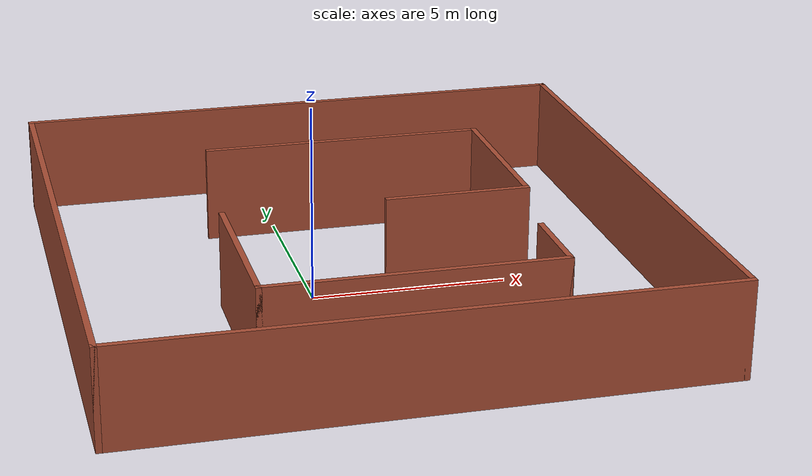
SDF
<?xml version='1.0'?>
<sdf version='1.7'>
  <model name='maze'>
    <pose>1.245 0.605 0 0 -0 0</pose>
    <link name='Wall_1'>
      <collision name='Wall_1_Collision'>
        <geometry>
          <box>
            <size>15 0.15 2.5</size>
          </box>
        </geometry>
        <pose>0 0 1.25 0 -0 0</pose>
      </collision>
      <visual name='Wall_1_Visual'>
        <pose>0 0 1.25 0 -0 0</pose>
        <geometry>
          <box>
            <size>15 0.15 2.5</size>
          </box>
        </geometry>
        <material>
          <script>
            <uri>file://media/materials/scripts/gazebo.material</uri>
            <name>Gazebo/Bricks</name>
          </script>
          <ambient>1 1 1 1</ambient>
        </material>
        <meta>
          <layer>0</layer>
        </meta>
      </visual>
      <pose>-0 -7.425 0 0 -0 0</pose>
    </link>
    <link name='Wall_10'>
      <collision name='Wall_10_Collision'>
        <geometry>
          <box>
            <size>3.75 0.15 2.5</size>
          </box>
        </geometry>
        <pose>0 0 1.25 0 -0 0</pose>
      </collision>
      <visual name='Wall_10_Visual'>
        <pose>0 0 1.25 0 -0 0</pose>
        <geometry>
          <box>
            <size>3.75 0.15 2.5</size>
          </box>
        </geometry>
        <material>
          <script>
            <uri>file://media/materials/scripts/gazebo.material</uri>
            <name>Gazebo/Bricks</name>
          </script>
          <ambient>1 1 1 1</ambient>
        </material>
        <meta>
          <layer>0</layer>
        </meta>
      </visual>
      <pose>2.50852 -0.592092 0 0 -0 3.14159</pose>
    </link>
    <link name='Wall_12'>
      <collision name='Wall_12_Collision'>
        <geometry>
          <box>
            <size>4.75 0.15 2.5</size>
          </box>
        </geometry>
        <pose>0 0 1.25 0 -0 0</pose>
      </collision>
      <visual name='Wall_12_Visual'>
        <pose>0 0 1.25 0 -0 0</pose>
        <geometry>
          <box>
            <size>4.75 0.15 2.5</size>
          </box>
        </geometry>
        <material>
          <script>
            <uri>file://media/materials/scripts/gazebo.material</uri>
            <name>Gazebo/Bricks</name>
          </script>
          <ambient>1 1 1 1</ambient>
        </material>
        <meta>
          <layer>0</layer>
        </meta>
      </visual>
      <pose>-3.49369 -2.92053 0 0 -0 -1.5708</pose>
    </link>
    <link name='Wall_13'>
      <collision name='Wall_13_Collision'>
        <geometry>
          <box>
            <size>7.5 0.15 2.5</size>
          </box>
        </geometry>
        <pose>0 0 1.25 0 -0 0</pose>
      </collision>
      <visual name='Wall_13_Visual'>
        <pose>0 0 1.25 0 -0 0</pose>
        <geometry>
          <box>
            <size>7.5 0.15 2.5</size>
          </box>
        </geometry>
        <material>
          <script>
            <uri>file://media/materials/scripts/gazebo.material</uri>
            <name>Gazebo/Bricks</name>
          </script>
          <ambient>1 1 1 1</ambient>
        </material>
        <meta>
          <layer>0</layer>
        </meta>
      </visual>
      <pose>0.181315 -5.22053 0 0 -0 0</pose>
    </link>
    <link name='Wall_14'>
      <collision name='Wall_14_Collision'>
        <geometry>
          <box>
            <size>2.25 0.15 2.5</size>
          </box>
        </geometry>
        <pose>0 0 1.25 0 -0 0</pose>
      </collision>
      <visual name='Wall_14_Visual'>
        <pose>0 0 1.25 0 -0 0</pose>
        <geometry>
          <box>
            <size>2.25 0.15 2.5</size>
          </box>
        </geometry>
        <material>
          <script>
            <uri>file://media/materials/scripts/gazebo.material</uri>
            <name>Gazebo/Bricks</name>
          </script>
          <ambient>1 1 1 1</ambient>
        </material>
        <meta>
          <layer>0</layer>
        </meta>
      </visual>
      <pose>3.85631 -4.17053 0 0 -0 1.5708</pose>
    </link>
    <link name='Wall_2'>
      <collision name='Wall_2_Collision'>
        <geometry>
          <box>
            <size>15 0.15 2.5</size>
          </box>
        </geometry>
        <pose>0 0 1.25 0 -0 0</pose>
      </collision>
      <visual name='Wall_2_Visual'>
        <pose>0 0 1.25 0 -0 0</pose>
        <geometry>
          <box>
            <size>15 0.15 2.5</size>
          </box>
        </geometry>
        <material>
          <script>
            <uri>file://media/materials/scripts/gazebo.material</uri>
            <name>Gazebo/Bricks</name>
          </script>
          <ambient>1 1 1 1</ambient>
        </material>
        <meta>
          <layer>0</layer>
        </meta>
      </visual>
      <pose>7.425 -0 0 0 -0 1.5708</pose>
    </link>
    <link name='Wall_3'>
      <collision name='Wall_3_Collision'>
        <geometry>
          <box>
            <size>15 0.15 2.5</size>
          </box>
        </geometry>
        <pose>0 0 1.25 0 -0 0</pose>
      </collision>
      <visual name='Wall_3_Visual'>
        <pose>0 0 1.25 0 -0 0</pose>
        <geometry>
          <box>
            <size>15 0.15 2.5</size>
          </box>
        </geometry>
        <material>
          <script>
            <uri>file://media/materials/scripts/gazebo.material</uri>
            <name>Gazebo/Bricks</name>
          </script>
          <ambient>1 1 1 1</ambient>
        </material>
        <meta>
          <layer>0</layer>
        </meta>
      </visual>
      <pose>-0 7.425 0 0 -0 3.14159</pose>
    </link>
    <link name='Wall_4'>
      <collision name='Wall_4_Collision'>
        <geometry>
          <box>
            <size>15 0.15 2.5</size>
          </box>
        </geometry>
        <pose>0 0 1.25 0 -0 0</pose>
      </collision>
      <visual name='Wall_4_Visual'>
        <pose>0 0 1.25 0 -0 0</pose>
        <geometry>
          <box>
            <size>15 0.15 2.5</size>
          </box>
        </geometry>
        <material>
          <script>
            <uri>file://media/materials/scripts/gazebo.material</uri>
            <name>Gazebo/Bricks</name>
          </script>
          <ambient>1 1 1 1</ambient>
        </material>
        <meta>
          <layer>0</layer>
        </meta>
      </visual>
      <pose>-7.425 -0 0 0 -0 -1.5708</pose>
    </link>
    <link name='Wall_8'>
      <collision name='Wall_8_Collision'>
        <geometry>
          <box>
            <size>7.5 0.15 2.5</size>
          </box>
        </geometry>
        <pose>0 0 1.25 0 -0 0</pose>
      </collision>
      <visual name='Wall_8_Visual'>
        <pose>0 0 1.25 0 -0 0</pose>
        <geometry>
          <box>
            <size>7.5 0.15 2.5</size>
          </box>
        </geometry>
        <material>
          <script>
            <uri>file://media/materials/scripts/gazebo.material</uri>
            <name>Gazebo/Bricks</name>
          </script>
          <ambient>1 1 1 1</ambient>
        </material>
        <meta>
          <layer>0</layer>
        </meta>
      </visual>
      <pose>0.633519 4.00791 0 0 -0 0</pose>
    </link>
    <link name='Wall_9'>
      <collision name='Wall_9_Collision'>
        <geometry>
          <box>
            <size>4.75 0.15 2.5</size>
          </box>
        </geometry>
        <pose>0 0 1.25 0 -0 0</pose>
      </collision>
      <visual name='Wall_9_Visual'>
        <pose>0 0 1.25 0 -0 0</pose>
        <geometry>
          <box>
            <size>4.75 0.15 2.5</size>
          </box>
        </geometry>
        <material>
          <script>
            <uri>file://media/materials/scripts/gazebo.material</uri>
            <name>Gazebo/Bricks</name>
          </script>
          <ambient>1 1 1 1</ambient>
        </material>
        <meta>
          <layer>0</layer>
        </meta>
      </visual>
      <pose>4.30852 1.70791 0 0 -0 -1.5708</pose>
    </link>
    <static>1</static>
  </model>
</sdf>
